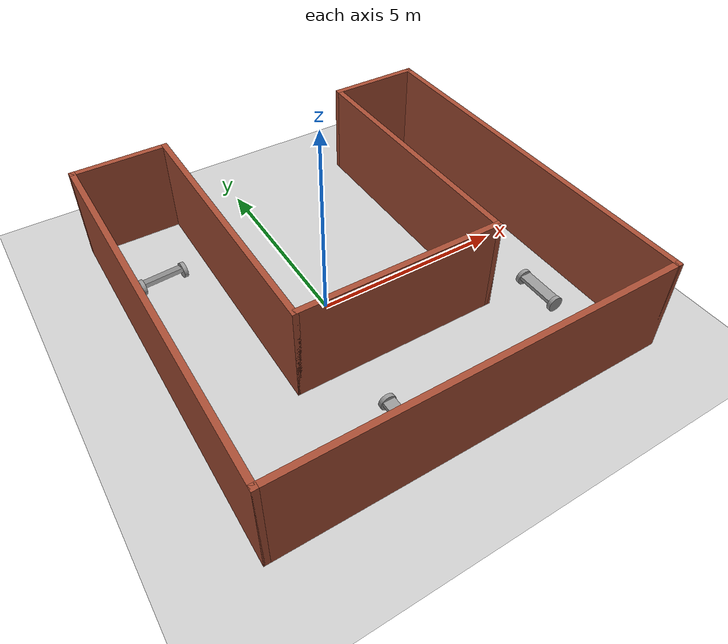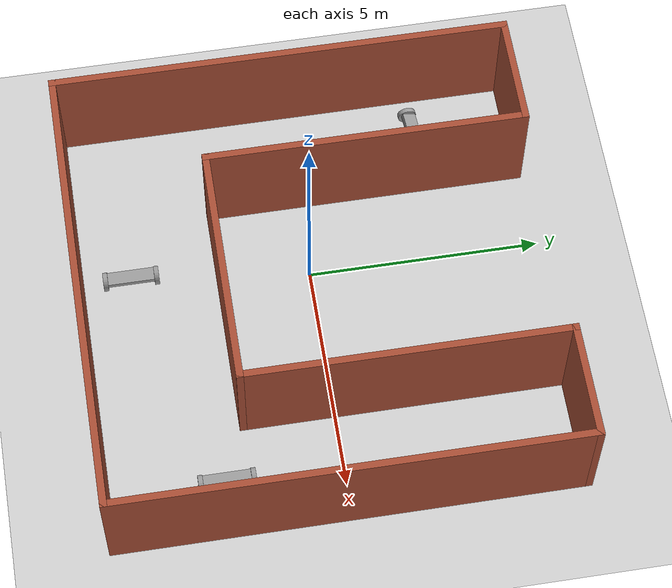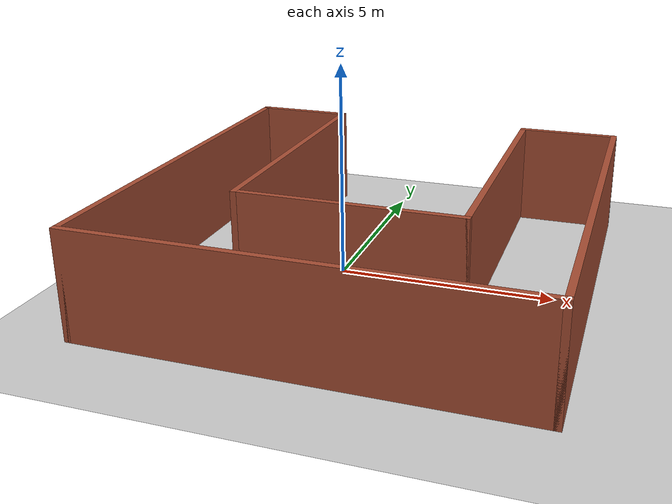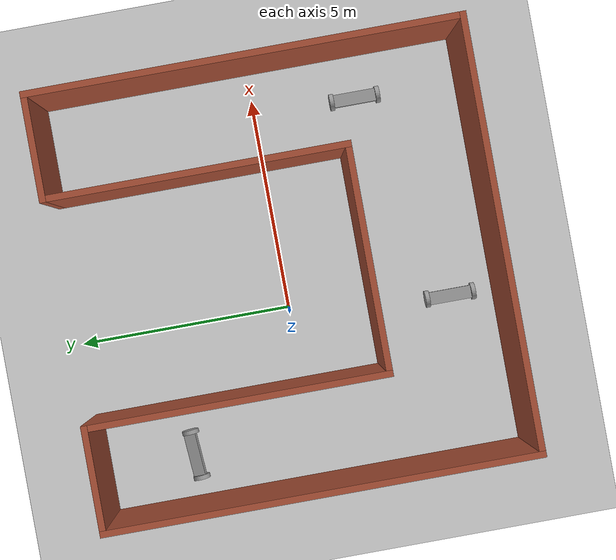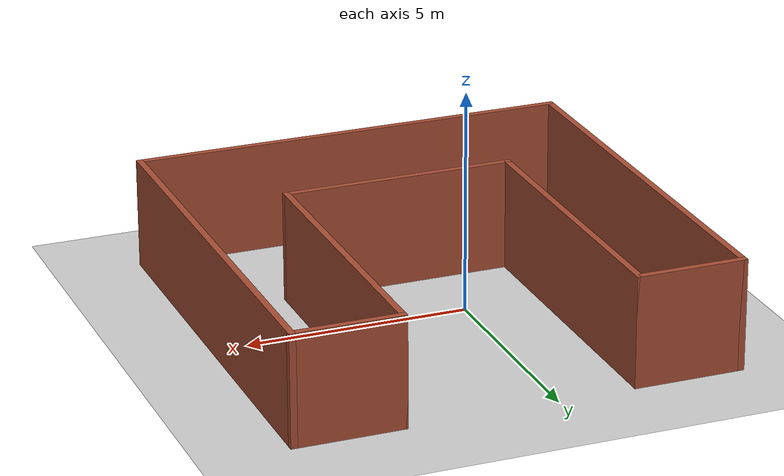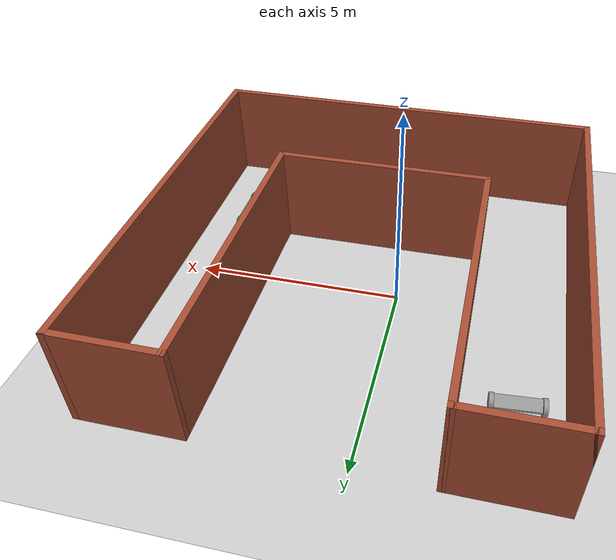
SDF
<sdf version="1.6">
 <world name="default">
  <light name="sun" type="directional">
   <pose>0 0 10 0 -0 0</pose>
   <diffuse>0.8 0.8 0.8 1</diffuse>
   <specular>0.2 0.2 0.2 1</specular>
   <attenuation>
    <range>1000</range>
    <constant>0.9</constant>
    <linear>0.01</linear>
    <quadratic>0.001</quadratic>
   </attenuation>
   <direction>-0.5 0.1 -0.9</direction>
  </light>
  <model name="ground_plane">
   <static>1</static>
   <link name="link">
    <collision name="collision">
     <geometry><plane><normal>0 0 1</normal><size>100 100</size></plane></geometry>
     <surface>
      <contact><collide_bitmask>65535</collide_bitmask></contact>
      <friction><ode><mu>100</mu><mu2>50</mu2></ode></friction>
     </surface>
    </collision>
    <visual name="visual">
     <cast_shadows>0</cast_shadows>
     <geometry><plane><normal>0 0 1</normal><size>100 100</size></plane></geometry>
     <material>
      <script><uri>file://media/materials/scripts/gazebo.material</uri><name>Gazebo/Grey</name></script>
     </material>
    </visual>
   </link>
  </model>
  <gravity>0 0 -9.8</gravity>
  <magnetic_field>6e-06 2.3e-05 -4.2e-05</magnetic_field>
  <atmosphere type="adiabatic"/>
  <physics name="default_physics" default="0" type="ode">
   <max_step_size>0.001</max_step_size>
   <real_time_factor>1</real_time_factor>
   <real_time_update_rate>1000</real_time_update_rate>
  </physics>
  <scene><ambient>0.4 0.4 0.4 1</ambient><background>0.7 0.7 0.7 1</background><shadows>1</shadows></scene>
  <audio><device>default</device></audio>
  <spherical_coordinates>
   <surface_model>EARTH_WGS84</surface_model>
   <latitude_deg>0</latitude_deg>
   <longitude_deg>0</longitude_deg>
   <elevation>0</elevation>
   <heading_deg>0</heading_deg>
  </spherical_coordinates>
  <model name="oficina">
   <pose>0.794659 -0.006701 0 0 -0 0</pose>
   <link name="Wall_13">
    <collision name="Wall_13_Collision">
     <geometry><box><size>10 0.15 2.5</size></box></geometry>
     <pose>0 0 1.25 0 -0 0</pose>
    </collision>
    <visual name="Wall_13_Visual">
     <pose>0 0 1.25 0 -0 0</pose>
     <geometry><box><size>10 0.15 2.5</size></box></geometry>
     <material>
      <script><uri>file://media/materials/scripts/gazebo.material</uri><name>Gazebo/Bricks</name></script>
      <ambient>1 1 1 1</ambient>
     </material>
     <meta><layer>0</layer></meta>
    </visual>
    <pose>-4.925 -0 0 0 -0 -1.5708</pose>
   </link>
   <link name="Wall_15">
    <collision name="Wall_15_Collision">
     <geometry><box><size>10 0.15 2.5</size></box></geometry>
     <pose>0 0 1.25 0 -0 0</pose>
    </collision>
    <visual name="Wall_15_Visual">
     <pose>0 0 1.25 0 -0 0</pose>
     <geometry><box><size>10 0.15 2.5</size></box></geometry>
     <material>
      <script><uri>file://media/materials/scripts/gazebo.material</uri><name>Gazebo/Bricks</name></script>
      <ambient>1 1 1 1</ambient>
     </material>
     <meta><layer>0</layer></meta>
    </visual>
    <pose>0 -4.925 0 0 -0 0</pose>
   </link>
   <link name="Wall_16">
    <collision name="Wall_16_Collision">
     <geometry><box><size>10 0.15 2.5</size></box></geometry>
     <pose>0 0 1.25 0 -0 0</pose>
    </collision>
    <visual name="Wall_16_Visual">
     <pose>0 0 1.25 0 -0 0</pose>
     <geometry><box><size>10 0.15 2.5</size></box></geometry>
     <material>
      <script><uri>file://media/materials/scripts/gazebo.material</uri><name>Gazebo/Bricks</name></script>
      <ambient>1 1 1 1</ambient>
     </material>
     <meta><layer>0</layer></meta>
    </visual>
    <pose>4.925 -0 0 0 -0 1.5708</pose>
   </link>
   <link name="Wall_17">
    <collision name="Wall_17_Collision">
     <geometry><box><size>2.5 0.15 2.5</size></box></geometry>
     <pose>0 0 1.25 0 -0 0</pose>
    </collision>
    <visual name="Wall_17_Visual">
     <pose>0 0 1.25 0 -0 0</pose>
     <geometry><box><size>2.5 0.15 2.5</size></box></geometry>
     <material>
      <script><uri>file://media/materials/scripts/gazebo.material</uri><name>Gazebo/Bricks</name></script>
      <ambient>1 1 1 1</ambient>
     </material>
     <meta><layer>0</layer></meta>
    </visual>
    <pose>3.75 4.925 0 0 -0 3.14159</pose>
   </link>
   <link name="Wall_19">
    <collision name="Wall_19_Collision">
     <geometry><box><size>7 0.15 2.5</size></box></geometry>
     <pose>0 0 1.25 0 -0 0</pose>
    </collision>
    <visual name="Wall_19_Visual">
     <pose>0 0 1.25 0 -0 0</pose>
     <geometry><box><size>7 0.15 2.5</size></box></geometry>
     <material>
      <script><uri>file://media/materials/scripts/gazebo.material</uri><name>Gazebo/Bricks</name></script>
      <ambient>1 1 1 1</ambient>
     </material>
     <meta><layer>0</layer></meta>
    </visual>
    <pose>2.575 1.5 0 0 -0 -1.5708</pose>
   </link>
   <link name="Wall_21">
    <collision name="Wall_21_Collision">
     <geometry><box><size>2.5 0.15 2.5</size></box></geometry>
     <pose>0 0 1.25 0 -0 0</pose>
    </collision>
    <visual name="Wall_21_Visual">
     <pose>0 0 1.25 0 -0 0</pose>
     <geometry><box><size>2.5 0.15 2.5</size></box></geometry>
     <material>
      <script><uri>file://media/materials/scripts/gazebo.material</uri><name>Gazebo/Bricks</name></script>
      <ambient>1 1 1 1</ambient>
     </material>
     <meta><layer>0</layer></meta>
    </visual>
    <pose>-3.75 4.925 0 0 -0 0</pose>
   </link>
   <link name="Wall_22">
    <collision name="Wall_22_Collision">
     <geometry><box><size>7 0.15 2.5</size></box></geometry>
     <pose>0 0 1.25 0 -0 0</pose>
    </collision>
    <visual name="Wall_22_Visual">
     <pose>0 0 1.25 0 -0 0</pose>
     <geometry><box><size>7 0.15 2.5</size></box></geometry>
     <material>
      <script><uri>file://media/materials/scripts/gazebo.material</uri><name>Gazebo/Bricks</name></script>
      <ambient>1 1 1 1</ambient>
     </material>
     <meta><layer>0</layer></meta>
    </visual>
    <pose>-2.575 1.5 0 0 -0 -1.5708</pose>
   </link>
   <link name="Wall_23">
    <collision name="Wall_23_Collision">
     <geometry><box><size>5.3 0.15 2.5</size></box></geometry>
     <pose>0 0 1.25 0 -0 0</pose>
    </collision>
    <visual name="Wall_23_Visual">
     <pose>0 0 1.25 0 -0 0</pose>
     <geometry><box><size>5.3 0.15 2.5</size></box></geometry>
     <material>
      <script><uri>file://media/materials/scripts/gazebo.material</uri><name>Gazebo/Bricks</name></script>
      <ambient>1 1 1 1</ambient>
     </material>
     <meta><layer>0</layer></meta>
    </visual>
    <pose>0 -1.925 0 0 -0 0</pose>
   </link>
   <static>1</static>
  </model>
  <model name="robot">
   <link name="link_0">
    <inertial>
     <mass>1</mass>
     <inertia>
      <ixx>0.166667</ixx>
      <ixy>0</ixy>
      <ixz>0</ixz>
      <iyy>0.166667</iyy>
      <iyz>0</iyz>
      <izz>0.166667</izz>
     </inertia>
    </inertial>
    <pose>0.168863 -0.266688 0.485 0 -0 0</pose>
    <visual name="visual">
     <geometry><box><size>0.3 1 0.1</size></box></geometry>
     <material>
      <lighting>1</lighting>
      <script><uri>file://media/materials/scripts/gazebo.material</uri><name>Gazebo/Grey</name></script>
      <shader type="vertex"><normal_map>__default__</normal_map></shader>
      <ambient>0.3 0.3 0.3 1</ambient>
      <diffuse>0.7 0.7 0.7 1</diffuse>
      <specular>0.01 0.01 0.01 1</specular>
      <emissive>0 0 0 1</emissive>
     </material>
    </visual>
    <collision name="collision">
     <geometry><box><size>0.3 1 0.1</size></box></geometry>
     <surface>
      <friction>
       <ode><mu>1</mu><mu2>1</mu2><fdir1>0 0 0</fdir1><slip1>0</slip1><slip2>0</slip2></ode>
       <torsional>
        <coefficient>1</coefficient>
        <patch_radius>0</patch_radius>
        <surface_radius>0</surface_radius>
        <use_patch_radius>1</use_patch_radius>
        <ode><slip>0</slip></ode>
       </torsional>
      </friction>
      <bounce><restitution_coefficient>0</restitution_coefficient><threshold>1e+06</threshold></bounce>
      <contact>
       <collide_without_contact>0</collide_without_contact>
       <collide_without_contact_bitmask>1</collide_without_contact_bitmask>
       <collide_bitmask>1</collide_bitmask>
       <ode>
        <soft_cfm>0</soft_cfm>
        <soft_erp>0.2</soft_erp>
        <kp>1e+13</kp>
        <kd>1</kd>
        <max_vel>0.01</max_vel>
        <min_depth>0</min_depth>
       </ode>
       <bullet>
        <split_impulse>1</split_impulse>
        <split_impulse_penetration_threshold>-0.01</split_impulse_penetration_threshold>
        <soft_cfm>0</soft_cfm>
        <soft_erp>0.2</soft_erp>
        <kp>1e+13</kp>
        <kd>1</kd>
       </bullet>
      </contact>
     </surface>
    </collision>
   </link>
   <link name="link_1">
    <inertial>
     <mass>1</mass>
     <inertia><ixx>0.145833</ixx><ixy>0</ixy><ixz>0</ixz><iyy>0.145833</iyy><iyz>0</iyz><izz>0.125</izz></inertia>
    </inertial>
    <pose>0.168863 0.283332 0.424995 0 -0 0</pose>
    <visual name="visual">
     <pose>0 0 0 1.5707 -0 0</pose>
     <geometry><cylinder><radius>0.2</radius><length>0.1</length></cylinder></geometry>
     <material>
      <lighting>1</lighting>
      <script><uri>file://media/materials/scripts/gazebo.material</uri><name>Gazebo/Grey</name></script>
      <shader type="vertex"><normal_map>__default__</normal_map></shader>
      <ambient>0.3 0.3 0.3 1</ambient>
      <diffuse>0.7 0.7 0.7 1</diffuse>
      <specular>0.01 0.01 0.01 1</specular>
      <emissive>0 0 0 1</emissive>
     </material>
    </visual>
    <collision name="collision">
     <pose>0 0 0 1.5707 -0 0</pose>
     <geometry><cylinder><radius>0.2</radius><length>0.1</length></cylinder></geometry>
     <surface>
      <friction>
       <ode><mu>1</mu><mu2>1</mu2><fdir1>0 0 0</fdir1><slip1>0</slip1><slip2>0</slip2></ode>
       <torsional>
        <coefficient>1</coefficient>
        <patch_radius>0</patch_radius>
        <surface_radius>0</surface_radius>
        <use_patch_radius>1</use_patch_radius>
        <ode><slip>0</slip></ode>
       </torsional>
      </friction>
      <bounce><restitution_coefficient>0</restitution_coefficient><threshold>1e+06</threshold></bounce>
      <contact>
       <collide_without_contact>0</collide_without_contact>
       <collide_without_contact_bitmask>1</collide_without_contact_bitmask>
       <collide_bitmask>1</collide_bitmask>
       <ode>
        <soft_cfm>0</soft_cfm>
        <soft_erp>0.2</soft_erp>
        <kp>1e+13</kp>
        <kd>1</kd>
        <max_vel>0.01</max_vel>
        <min_depth>0</min_depth>
       </ode>
       <bullet>
        <split_impulse>1</split_impulse>
        <split_impulse_penetration_threshold>-0.01</split_impulse_penetration_threshold>
        <soft_cfm>0</soft_cfm>
        <soft_erp>0.2</soft_erp>
        <kp>1e+13</kp>
        <kd>1</kd>
       </bullet>
      </contact>
     </surface>
    </collision>
   </link>
   <link name="link_1_clone">
    <inertial>
     <mass>1</mass>
     <inertia><ixx>0.145833</ixx><ixy>0</ixy><ixz>0</ixz><iyy>0.145833</iyy><iyz>0</iyz><izz>0.125</izz></inertia>
    </inertial>
    <pose>0.168863 -0.816707 0.424995 0 -0 0</pose>
    <visual name="visual">
     <pose>0 0 0 1.5707 -0 0</pose>
     <geometry><cylinder><radius>0.2</radius><length>0.1</length></cylinder></geometry>
     <material>
      <lighting>1</lighting>
      <script><uri>file://media/materials/scripts/gazebo.material</uri><name>Gazebo/Grey</name></script>
      <shader type="vertex"><normal_map>__default__</normal_map></shader>
      <ambient>0.3 0.3 0.3 1</ambient>
      <diffuse>0.7 0.7 0.7 1</diffuse>
      <specular>0.01 0.01 0.01 1</specular>
      <emissive>0 0 0 1</emissive>
     </material>
    </visual>
    <collision name="collision">
     <pose>0 0 0 1.5707 -0 0</pose>
     <geometry><cylinder><radius>0.2</radius><length>0.1</length></cylinder></geometry>
     <surface>
      <friction>
       <ode><mu>1</mu><mu2>1</mu2><fdir1>0 0 0</fdir1><slip1>0</slip1><slip2>0</slip2></ode>
       <torsional>
        <coefficient>1</coefficient>
        <patch_radius>0</patch_radius>
        <surface_radius>0</surface_radius>
        <use_patch_radius>1</use_patch_radius>
        <ode><slip>0</slip></ode>
       </torsional>
      </friction>
      <bounce><restitution_coefficient>0</restitution_coefficient><threshold>1e+06</threshold></bounce>
      <contact>
       <collide_without_contact>0</collide_without_contact>
       <collide_without_contact_bitmask>1</collide_without_contact_bitmask>
       <collide_bitmask>1</collide_bitmask>
       <ode>
        <soft_cfm>0</soft_cfm>
        <soft_erp>0.2</soft_erp>
        <kp>1e+13</kp>
        <kd>1</kd>
        <max_vel>0.01</max_vel>
        <min_depth>0</min_depth>
       </ode>
       <bullet>
        <split_impulse>1</split_impulse>
        <split_impulse_penetration_threshold>-0.01</split_impulse_penetration_threshold>
        <soft_cfm>0</soft_cfm>
        <soft_erp>0.2</soft_erp>
        <kp>1e+13</kp>
        <kd>1</kd>
       </bullet>
      </contact>
     </surface>
    </collision>
   </link>
   <joint name="link_0_JOINT_0" type="revolute">
    <parent>link_0</parent>
    <child>link_1</child>
    <axis>
     <xyz>0 0 1</xyz>
     <use_parent_model_frame>0</use_parent_model_frame>
     <limit>
      <lower>-1.79769e+308</lower>
      <upper>1.79769e+308</upper>
      <effort>-1</effort>
      <velocity>-1</velocity>
     </limit>
     <dynamics>
      <spring_reference>0</spring_reference>
      <spring_stiffness>0</spring_stiffness>
      <damping>0</damping>
     </dynamics>
    </axis>
    <physics>
     <ode><limit><cfm>0</cfm><erp>0.2</erp></limit><suspension><cfm>0</cfm><erp>0.2</erp></suspension></ode>
    </physics>
   </joint>
   <joint name="link_0_JOINT_1" type="revolute">
    <parent>link_0</parent>
    <child>link_1_clone</child>
    <axis>
     <xyz>0 0 1</xyz>
     <use_parent_model_frame>0</use_parent_model_frame>
     <limit>
      <lower>-1.79769e+308</lower>
      <upper>1.79769e+308</upper>
      <effort>-1</effort>
      <velocity>-1</velocity>
     </limit>
     <dynamics>
      <spring_reference>0</spring_reference>
      <spring_stiffness>0</spring_stiffness>
      <damping>0</damping>
     </dynamics>
    </axis>
    <physics>
     <ode><limit><cfm>0</cfm><erp>0.2</erp></limit><suspension><cfm>0</cfm><erp>0.2</erp></suspension></ode>
    </physics>
   </joint>
   <static>0</static>
   <pose>-0.567803 -3.56173 -0.224991 3e-06 -0 0</pose>
  </model>
  <model name="robot_0">
   <link name="link_0">
    <inertial>
     <mass>1</mass>
     <inertia>
      <ixx>0.166667</ixx>
      <ixy>0</ixy>
      <ixz>0</ixz>
      <iyy>0.166667</iyy>
      <iyz>0</iyz>
      <izz>0.166667</izz>
     </inertia>
    </inertial>
    <pose>0.168863 -0.266688 0.485 0 -0 0</pose>
    <visual name="visual">
     <geometry><box><size>0.3 1 0.1</size></box></geometry>
     <material>
      <lighting>1</lighting>
      <script><uri>file://media/materials/scripts/gazebo.material</uri><name>Gazebo/Grey</name></script>
      <shader type="vertex"><normal_map>__default__</normal_map></shader>
      <ambient>0.3 0.3 0.3 1</ambient>
      <diffuse>0.7 0.7 0.7 1</diffuse>
      <specular>0.01 0.01 0.01 1</specular>
      <emissive>0 0 0 1</emissive>
     </material>
    </visual>
    <collision name="collision">
     <geometry><box><size>0.3 1 0.1</size></box></geometry>
     <surface>
      <friction>
       <ode><mu>1</mu><mu2>1</mu2><fdir1>0 0 0</fdir1><slip1>0</slip1><slip2>0</slip2></ode>
       <torsional>
        <coefficient>1</coefficient>
        <patch_radius>0</patch_radius>
        <surface_radius>0</surface_radius>
        <use_patch_radius>1</use_patch_radius>
        <ode><slip>0</slip></ode>
       </torsional>
      </friction>
      <bounce><restitution_coefficient>0</restitution_coefficient><threshold>1e+06</threshold></bounce>
      <contact>
       <collide_without_contact>0</collide_without_contact>
       <collide_without_contact_bitmask>1</collide_without_contact_bitmask>
       <collide_bitmask>1</collide_bitmask>
       <ode>
        <soft_cfm>0</soft_cfm>
        <soft_erp>0.2</soft_erp>
        <kp>1e+13</kp>
        <kd>1</kd>
        <max_vel>0.01</max_vel>
        <min_depth>0</min_depth>
       </ode>
       <bullet>
        <split_impulse>1</split_impulse>
        <split_impulse_penetration_threshold>-0.01</split_impulse_penetration_threshold>
        <soft_cfm>0</soft_cfm>
        <soft_erp>0.2</soft_erp>
        <kp>1e+13</kp>
        <kd>1</kd>
       </bullet>
      </contact>
     </surface>
    </collision>
   </link>
   <link name="link_1">
    <inertial>
     <mass>1</mass>
     <inertia><ixx>0.145833</ixx><ixy>0</ixy><ixz>0</ixz><iyy>0.145833</iyy><iyz>0</iyz><izz>0.125</izz></inertia>
    </inertial>
    <pose>0.168863 0.283332 0.424995 0 -0 0</pose>
    <visual name="visual">
     <pose>0 0 0 1.5707 -0 0</pose>
     <geometry><cylinder><radius>0.2</radius><length>0.1</length></cylinder></geometry>
     <material>
      <lighting>1</lighting>
      <script><uri>file://media/materials/scripts/gazebo.material</uri><name>Gazebo/Grey</name></script>
      <shader type="vertex"><normal_map>__default__</normal_map></shader>
      <ambient>0.3 0.3 0.3 1</ambient>
      <diffuse>0.7 0.7 0.7 1</diffuse>
      <specular>0.01 0.01 0.01 1</specular>
      <emissive>0 0 0 1</emissive>
     </material>
    </visual>
    <collision name="collision">
     <pose>0 0 0 1.5707 -0 0</pose>
     <geometry><cylinder><radius>0.2</radius><length>0.1</length></cylinder></geometry>
     <surface>
      <friction>
       <ode><mu>1</mu><mu2>1</mu2><fdir1>0 0 0</fdir1><slip1>0</slip1><slip2>0</slip2></ode>
       <torsional>
        <coefficient>1</coefficient>
        <patch_radius>0</patch_radius>
        <surface_radius>0</surface_radius>
        <use_patch_radius>1</use_patch_radius>
        <ode><slip>0</slip></ode>
       </torsional>
      </friction>
      <bounce><restitution_coefficient>0</restitution_coefficient><threshold>1e+06</threshold></bounce>
      <contact>
       <collide_without_contact>0</collide_without_contact>
       <collide_without_contact_bitmask>1</collide_without_contact_bitmask>
       <collide_bitmask>1</collide_bitmask>
       <ode>
        <soft_cfm>0</soft_cfm>
        <soft_erp>0.2</soft_erp>
        <kp>1e+13</kp>
        <kd>1</kd>
        <max_vel>0.01</max_vel>
        <min_depth>0</min_depth>
       </ode>
       <bullet>
        <split_impulse>1</split_impulse>
        <split_impulse_penetration_threshold>-0.01</split_impulse_penetration_threshold>
        <soft_cfm>0</soft_cfm>
        <soft_erp>0.2</soft_erp>
        <kp>1e+13</kp>
        <kd>1</kd>
       </bullet>
      </contact>
     </surface>
    </collision>
   </link>
   <link name="link_1_clone">
    <inertial>
     <mass>1</mass>
     <inertia><ixx>0.145833</ixx><ixy>0</ixy><ixz>0</ixz><iyy>0.145833</iyy><iyz>0</iyz><izz>0.125</izz></inertia>
    </inertial>
    <pose>0.168863 -0.816707 0.424995 0 -0 0</pose>
    <visual name="visual">
     <pose>0 0 0 1.5707 -0 0</pose>
     <geometry><cylinder><radius>0.2</radius><length>0.1</length></cylinder></geometry>
     <material>
      <lighting>1</lighting>
      <script><uri>file://media/materials/scripts/gazebo.material</uri><name>Gazebo/Grey</name></script>
      <shader type="vertex"><normal_map>__default__</normal_map></shader>
      <ambient>0.3 0.3 0.3 1</ambient>
      <diffuse>0.7 0.7 0.7 1</diffuse>
      <specular>0.01 0.01 0.01 1</specular>
      <emissive>0 0 0 1</emissive>
     </material>
    </visual>
    <collision name="collision">
     <pose>0 0 0 1.5707 -0 0</pose>
     <geometry><cylinder><radius>0.2</radius><length>0.1</length></cylinder></geometry>
     <surface>
      <friction>
       <ode><mu>1</mu><mu2>1</mu2><fdir1>0 0 0</fdir1><slip1>0</slip1><slip2>0</slip2></ode>
       <torsional>
        <coefficient>1</coefficient>
        <patch_radius>0</patch_radius>
        <surface_radius>0</surface_radius>
        <use_patch_radius>1</use_patch_radius>
        <ode><slip>0</slip></ode>
       </torsional>
      </friction>
      <bounce><restitution_coefficient>0</restitution_coefficient><threshold>1e+06</threshold></bounce>
      <contact>
       <collide_without_contact>0</collide_without_contact>
       <collide_without_contact_bitmask>1</collide_without_contact_bitmask>
       <collide_bitmask>1</collide_bitmask>
       <ode>
        <soft_cfm>0</soft_cfm>
        <soft_erp>0.2</soft_erp>
        <kp>1e+13</kp>
        <kd>1</kd>
        <max_vel>0.01</max_vel>
        <min_depth>0</min_depth>
       </ode>
       <bullet>
        <split_impulse>1</split_impulse>
        <split_impulse_penetration_threshold>-0.01</split_impulse_penetration_threshold>
        <soft_cfm>0</soft_cfm>
        <soft_erp>0.2</soft_erp>
        <kp>1e+13</kp>
        <kd>1</kd>
       </bullet>
      </contact>
     </surface>
    </collision>
   </link>
   <joint name="link_0_JOINT_0" type="revolute">
    <parent>link_0</parent>
    <child>link_1</child>
    <axis>
     <xyz>0 0 1</xyz>
     <use_parent_model_frame>0</use_parent_model_frame>
     <limit>
      <lower>-1.79769e+308</lower>
      <upper>1.79769e+308</upper>
      <effort>-1</effort>
      <velocity>-1</velocity>
     </limit>
     <dynamics>
      <spring_reference>0</spring_reference>
      <spring_stiffness>0</spring_stiffness>
      <damping>0</damping>
     </dynamics>
    </axis>
    <physics>
     <ode><limit><cfm>0</cfm><erp>0.2</erp></limit><suspension><cfm>0</cfm><erp>0.2</erp></suspension></ode>
    </physics>
   </joint>
   <joint name="link_0_JOINT_1" type="revolute">
    <parent>link_0</parent>
    <child>link_1_clone</child>
    <axis>
     <xyz>0 0 1</xyz>
     <use_parent_model_frame>0</use_parent_model_frame>
     <limit>
      <lower>-1.79769e+308</lower>
      <upper>1.79769e+308</upper>
      <effort>-1</effort>
      <velocity>-1</velocity>
     </limit>
     <dynamics>
      <spring_reference>0</spring_reference>
      <spring_stiffness>0</spring_stiffness>
      <damping>0</damping>
     </dynamics>
    </axis>
    <physics>
     <ode><limit><cfm>0</cfm><erp>0.2</erp></limit><suspension><cfm>0</cfm><erp>0.2</erp></suspension></ode>
    </physics>
   </joint>
   <static>0</static>
   <pose>4.44836 -2.1602 -0.224991 4e-06 -0 0</pose>
  </model>
  <model name="robot_1">
   <link name="link_0">
    <inertial>
     <mass>1</mass>
     <inertia>
      <ixx>0.166667</ixx>
      <ixy>0</ixy>
      <ixz>0</ixz>
      <iyy>0.166667</iyy>
      <iyz>0</iyz>
      <izz>0.166667</izz>
     </inertia>
    </inertial>
    <pose>0.168863 -0.266688 0.485 0 -0 0</pose>
    <visual name="visual">
     <geometry><box><size>0.3 1 0.1</size></box></geometry>
     <material>
      <lighting>1</lighting>
      <script><uri>file://media/materials/scripts/gazebo.material</uri><name>Gazebo/Grey</name></script>
      <shader type="vertex"><normal_map>__default__</normal_map></shader>
      <ambient>0.3 0.3 0.3 1</ambient>
      <diffuse>0.7 0.7 0.7 1</diffuse>
      <specular>0.01 0.01 0.01 1</specular>
      <emissive>0 0 0 1</emissive>
     </material>
    </visual>
    <collision name="collision">
     <geometry><box><size>0.3 1 0.1</size></box></geometry>
     <surface>
      <friction>
       <ode><mu>1</mu><mu2>1</mu2><fdir1>0 0 0</fdir1><slip1>0</slip1><slip2>0</slip2></ode>
       <torsional>
        <coefficient>1</coefficient>
        <patch_radius>0</patch_radius>
        <surface_radius>0</surface_radius>
        <use_patch_radius>1</use_patch_radius>
        <ode><slip>0</slip></ode>
       </torsional>
      </friction>
      <bounce><restitution_coefficient>0</restitution_coefficient><threshold>1e+06</threshold></bounce>
      <contact>
       <collide_without_contact>0</collide_without_contact>
       <collide_without_contact_bitmask>1</collide_without_contact_bitmask>
       <collide_bitmask>1</collide_bitmask>
       <ode>
        <soft_cfm>0</soft_cfm>
        <soft_erp>0.2</soft_erp>
        <kp>1e+13</kp>
        <kd>1</kd>
        <max_vel>0.01</max_vel>
        <min_depth>0</min_depth>
       </ode>
       <bullet>
        <split_impulse>1</split_impulse>
        <split_impulse_penetration_threshold>-0.01</split_impulse_penetration_threshold>
        <soft_cfm>0</soft_cfm>
        <soft_erp>0.2</soft_erp>
        <kp>1e+13</kp>
        <kd>1</kd>
       </bullet>
      </contact>
     </surface>
    </collision>
   </link>
   <link name="link_1">
    <inertial>
     <mass>1</mass>
     <inertia><ixx>0.145833</ixx><ixy>0</ixy><ixz>0</ixz><iyy>0.145833</iyy><iyz>0</iyz><izz>0.125</izz></inertia>
    </inertial>
    <pose>0.168863 0.283332 0.424995 0 -0 0</pose>
    <visual name="visual">
     <pose>0 0 0 1.5707 -0 0</pose>
     <geometry><cylinder><radius>0.2</radius><length>0.1</length></cylinder></geometry>
     <material>
      <lighting>1</lighting>
      <script><uri>file://media/materials/scripts/gazebo.material</uri><name>Gazebo/Grey</name></script>
      <shader type="vertex"><normal_map>__default__</normal_map></shader>
      <ambient>0.3 0.3 0.3 1</ambient>
      <diffuse>0.7 0.7 0.7 1</diffuse>
      <specular>0.01 0.01 0.01 1</specular>
      <emissive>0 0 0 1</emissive>
     </material>
    </visual>
    <collision name="collision">
     <pose>0 0 0 1.5707 -0 0</pose>
     <geometry><cylinder><radius>0.2</radius><length>0.1</length></cylinder></geometry>
     <surface>
      <friction>
       <ode><mu>1</mu><mu2>1</mu2><fdir1>0 0 0</fdir1><slip1>0</slip1><slip2>0</slip2></ode>
       <torsional>
        <coefficient>1</coefficient>
        <patch_radius>0</patch_radius>
        <surface_radius>0</surface_radius>
        <use_patch_radius>1</use_patch_radius>
        <ode><slip>0</slip></ode>
       </torsional>
      </friction>
      <bounce><restitution_coefficient>0</restitution_coefficient><threshold>1e+06</threshold></bounce>
      <contact>
       <collide_without_contact>0</collide_without_contact>
       <collide_without_contact_bitmask>1</collide_without_contact_bitmask>
       <collide_bitmask>1</collide_bitmask>
       <ode>
        <soft_cfm>0</soft_cfm>
        <soft_erp>0.2</soft_erp>
        <kp>1e+13</kp>
        <kd>1</kd>
        <max_vel>0.01</max_vel>
        <min_depth>0</min_depth>
       </ode>
       <bullet>
        <split_impulse>1</split_impulse>
        <split_impulse_penetration_threshold>-0.01</split_impulse_penetration_threshold>
        <soft_cfm>0</soft_cfm>
        <soft_erp>0.2</soft_erp>
        <kp>1e+13</kp>
        <kd>1</kd>
       </bullet>
      </contact>
     </surface>
    </collision>
   </link>
   <link name="link_1_clone">
    <inertial>
     <mass>1</mass>
     <inertia><ixx>0.145833</ixx><ixy>0</ixy><ixz>0</ixz><iyy>0.145833</iyy><iyz>0</iyz><izz>0.125</izz></inertia>
    </inertial>
    <pose>0.168863 -0.816707 0.424995 0 -0 0</pose>
    <visual name="visual">
     <pose>0 0 0 1.5707 -0 0</pose>
     <geometry><cylinder><radius>0.2</radius><length>0.1</length></cylinder></geometry>
     <material>
      <lighting>1</lighting>
      <script><uri>file://media/materials/scripts/gazebo.material</uri><name>Gazebo/Grey</name></script>
      <shader type="vertex"><normal_map>__default__</normal_map></shader>
      <ambient>0.3 0.3 0.3 1</ambient>
      <diffuse>0.7 0.7 0.7 1</diffuse>
      <specular>0.01 0.01 0.01 1</specular>
      <emissive>0 0 0 1</emissive>
     </material>
    </visual>
    <collision name="collision">
     <pose>0 0 0 1.5707 -0 0</pose>
     <geometry><cylinder><radius>0.2</radius><length>0.1</length></cylinder></geometry>
     <surface>
      <friction>
       <ode><mu>1</mu><mu2>1</mu2><fdir1>0 0 0</fdir1><slip1>0</slip1><slip2>0</slip2></ode>
       <torsional>
        <coefficient>1</coefficient>
        <patch_radius>0</patch_radius>
        <surface_radius>0</surface_radius>
        <use_patch_radius>1</use_patch_radius>
        <ode><slip>0</slip></ode>
       </torsional>
      </friction>
      <bounce><restitution_coefficient>0</restitution_coefficient><threshold>1e+06</threshold></bounce>
      <contact>
       <collide_without_contact>0</collide_without_contact>
       <collide_without_contact_bitmask>1</collide_without_contact_bitmask>
       <collide_bitmask>1</collide_bitmask>
       <ode>
        <soft_cfm>0</soft_cfm>
        <soft_erp>0.2</soft_erp>
        <kp>1e+13</kp>
        <kd>1</kd>
        <max_vel>0.01</max_vel>
        <min_depth>0</min_depth>
       </ode>
       <bullet>
        <split_impulse>1</split_impulse>
        <split_impulse_penetration_threshold>-0.01</split_impulse_penetration_threshold>
        <soft_cfm>0</soft_cfm>
        <soft_erp>0.2</soft_erp>
        <kp>1e+13</kp>
        <kd>1</kd>
       </bullet>
      </contact>
     </surface>
    </collision>
   </link>
   <joint name="link_0_JOINT_0" type="revolute">
    <parent>link_0</parent>
    <child>link_1</child>
    <axis>
     <xyz>0 0 1</xyz>
     <use_parent_model_frame>0</use_parent_model_frame>
     <limit>
      <lower>-1.79769e+308</lower>
      <upper>1.79769e+308</upper>
      <effort>-1</effort>
      <velocity>-1</velocity>
     </limit>
     <dynamics>
      <spring_reference>0</spring_reference>
      <spring_stiffness>0</spring_stiffness>
      <damping>0</damping>
     </dynamics>
    </axis>
    <physics>
     <ode><limit><cfm>0</cfm><erp>0.2</erp></limit><suspension><cfm>0</cfm><erp>0.2</erp></suspension></ode>
    </physics>
   </joint>
   <joint name="link_0_JOINT_1" type="revolute">
    <parent>link_0</parent>
    <child>link_1_clone</child>
    <axis>
     <xyz>0 0 1</xyz>
     <use_parent_model_frame>0</use_parent_model_frame>
     <limit>
      <lower>-1.79769e+308</lower>
      <upper>1.79769e+308</upper>
      <effort>-1</effort>
      <velocity>-1</velocity>
     </limit>
     <dynamics>
      <spring_reference>0</spring_reference>
      <spring_stiffness>0</spring_stiffness>
      <damping>0</damping>
     </dynamics>
    </axis>
    <physics>
     <ode><limit><cfm>0</cfm><erp>0.2</erp></limit><suspension><cfm>0</cfm><erp>0.2</erp></suspension></ode>
    </physics>
   </joint>
   <static>0</static>
   <pose>-2.78523 2.82807 -0.257148 -9e-06 -0.350716 -1.49938</pose>
  </model>
 </world>
</sdf>
